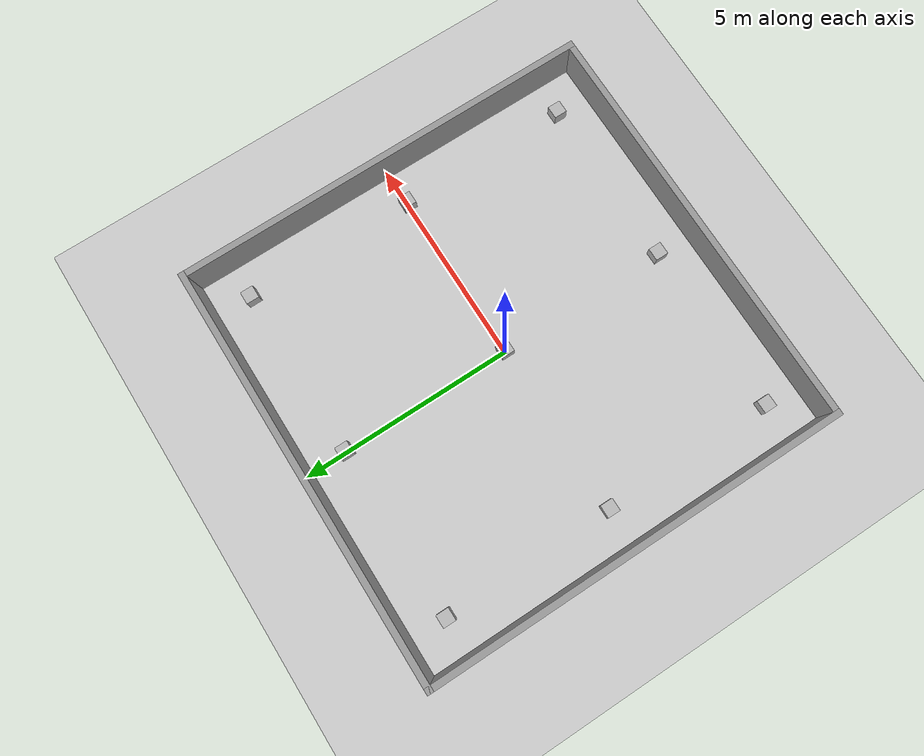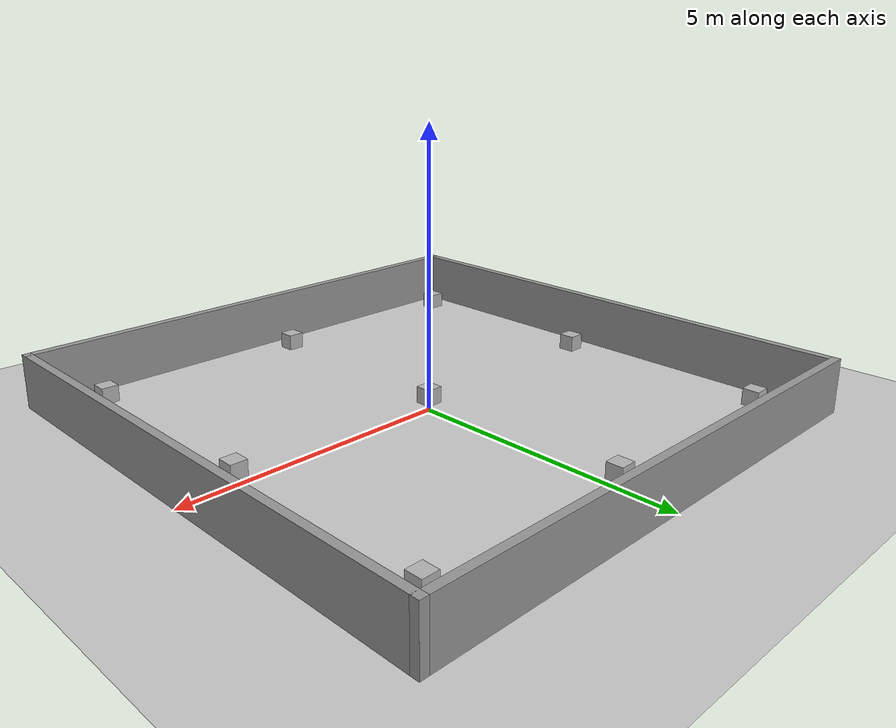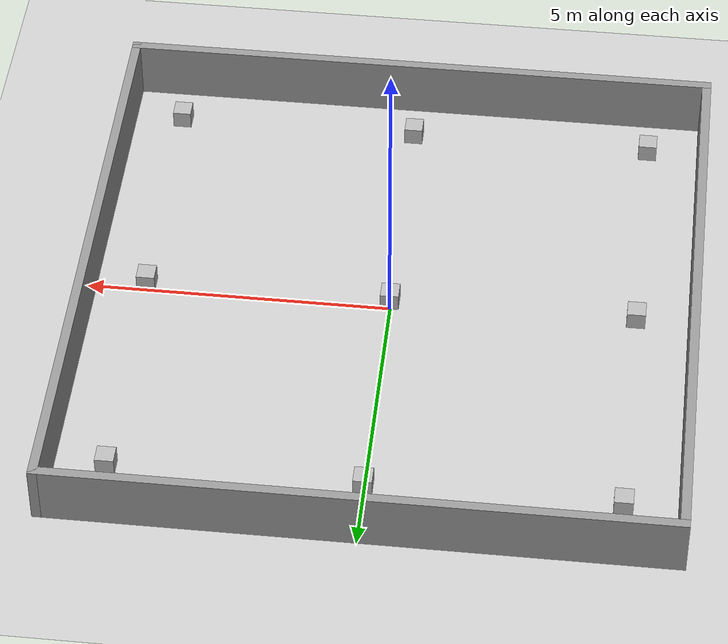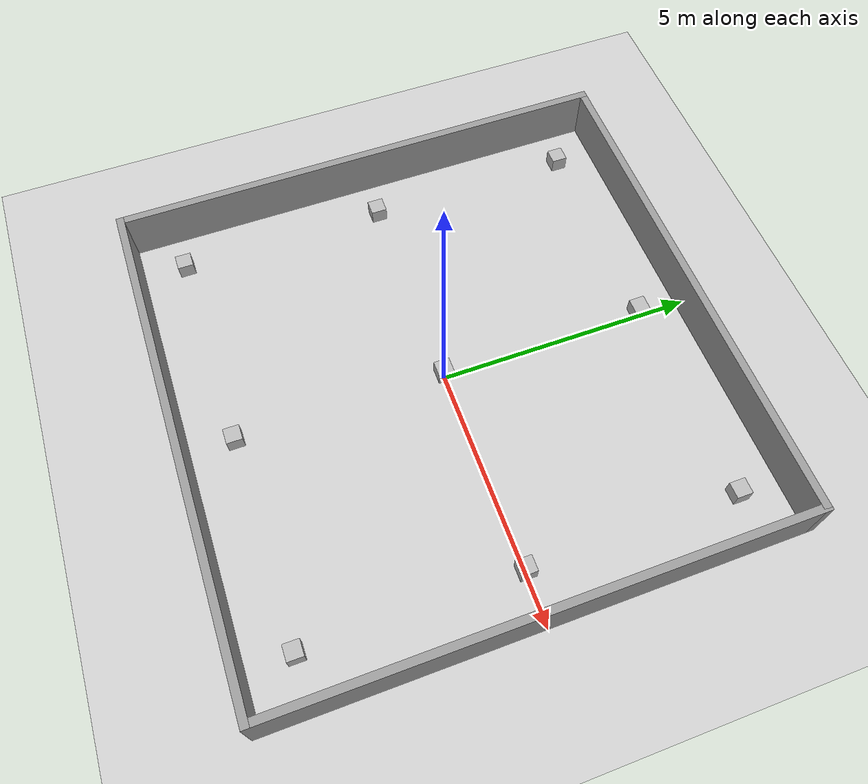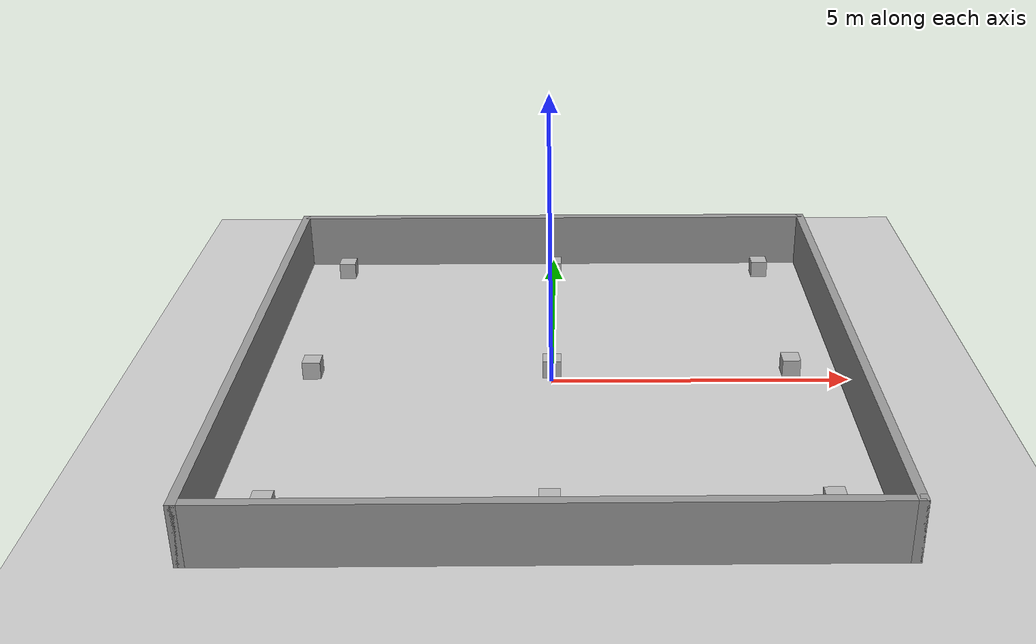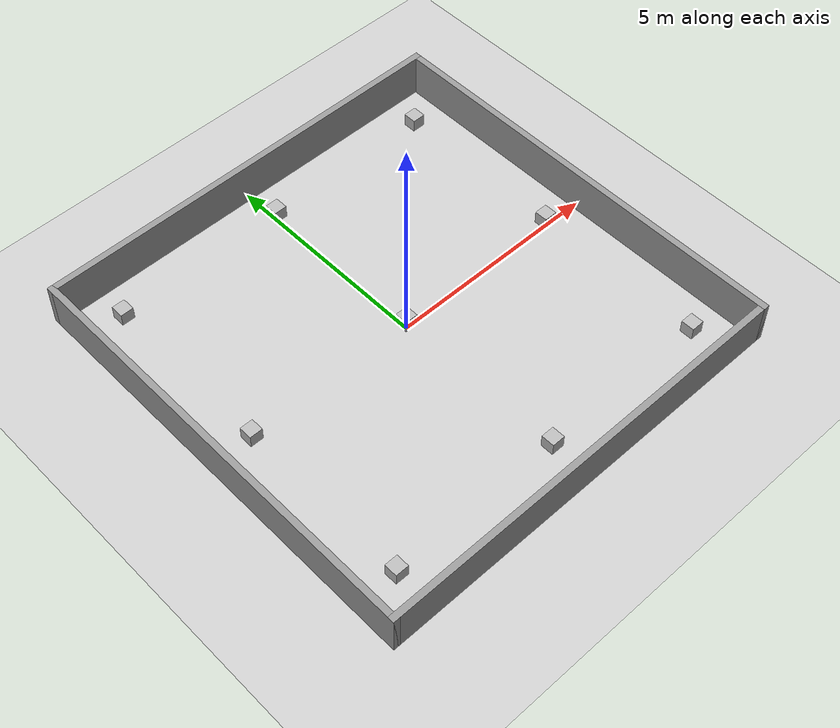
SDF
<?xml version='1.0' encoding='UTF-8'?>
<sdf version="1.6">
  <world name="default">
    <include>
      <uri>model://sun</uri>
    </include>
    <include>
      <uri>model://ground_plane</uri>
    </include>

    <model name="EmptyRoom">
      <include>
        <uri>model://empty_room</uri>
      </include>
    </model>

    <model name="DynamicObstacle1">
      <pose>-4 4 0.15 0 0 0</pose>
      <include>
        <uri>model://dynamic_obstacle</uri>
      </include>
    </model>

    <model name="DynamicObstacle2">
      <pose>-4 0 0.15 0 0 0</pose>
      <include>
        <uri>model://dynamic_obstacle</uri>
      </include>
    </model>

    <model name="DynamicObstacle3">
      <pose>-4 -4 0.15 0 0 0</pose>
      <include>
        <uri>model://dynamic_obstacle</uri>
      </include>
    </model>

    <model name="DynamicObstacle4">
      <pose>0 4 0.15 0 0 0</pose>
      <include>
        <uri>model://dynamic_obstacle</uri>
      </include>
    </model>

    <model name="DynamicObstacle5">
      <pose>0 0 0.15 0 0 0</pose>
      <include>
        <uri>model://dynamic_obstacle</uri>
      </include>
    </model>

    <model name="DynamicObstacle6">
      <pose>0 -4 0.15 0 0 0</pose>
      <include>
        <uri>model://dynamic_obstacle</uri>
      </include>
    </model>

    <model name="DynamicObstacle7">
      <pose>4 4 0.15 0 0 0</pose>
      <include>
        <uri>model://dynamic_obstacle</uri>
      </include>
    </model>

    <model name="DynamicObstacle8">
      <pose>4 0 0.15 0 0 0</pose>
      <include>
        <uri>model://dynamic_obstacle</uri>
      </include>
    </model>

    <model name="DynamicObstacle9">
      <pose>4 -4 0.15 0 0 0</pose>
      <include>
        <uri>model://dynamic_obstacle</uri>
      </include>
    </model>
  </world>
</sdf>

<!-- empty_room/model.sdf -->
<sdf version='1.6'>
  <model name='EmptyRoom'>
    <static>1</static>
    <pose frame=''>0.0 0.0 0.0 0.0 0.0 0.0</pose>
    <link name='Wall_1'>
      <collision name='Wall_1_Collision'>
        <geometry>
          <box>
            <size>10 0.15 1</size>
          </box>
        </geometry>
	<max_contacts>1</max_contacts>
	<surface>
          <bounce/>
          <friction>
            <ode/>
          </friction>
          <contact>
            <ode/>
          </contact>
        </surface>
        <pose frame=''>0 0 0.5 0 -0 0</pose>
      </collision>
      <visual name='Wall_1_Visual'>
        <pose frame=''>0 0 0.5 0 -0 0</pose>
        <geometry>
          <box>
            <size>10 0.15 1</size>
          </box>
        </geometry>
        <material>
          <script>
            <uri>file://media/materials/scripts/gazebo.material</uri>
            <name>Gazebo/Grey</name>
          </script>
          <ambient>1 1 1 1</ambient>
        </material>
        <meta>
          <layer>0</layer>
        </meta>
      </visual>
      <pose frame=''>-4.925 0 0 0 -0 -1.5708</pose>
    </link>
    <link name='Wall_2'>
      <collision name='Wall_2_Collision'>
        <geometry>
          <box>
            <size>10 0.15 1</size>
          </box>
        </geometry>
	<max_contacts>1</max_contacts>
	<surface>
          <bounce/>
          <friction>
            <ode/>
          </friction>
          <contact>
            <ode/>
          </contact>
        </surface>
        <pose frame=''>0 0 0.5 0 -0 0</pose>
      </collision>
      <visual name='Wall_2_Visual'>
        <pose frame=''>0 0 0.5 0 -0 0</pose>
        <geometry>
          <box>
            <size>10 0.15 1</size>
          </box>
        </geometry>
        <material>
          <script>
            <uri>file://media/materials/scripts/gazebo.material</uri>
            <name>Gazebo/Grey</name>
          </script>
          <ambient>1 1 1 1</ambient>
        </material>
        <meta>
          <layer>0</layer>
        </meta>
      </visual>
      <pose frame=''>-0 -4.925 0 0 -0 0</pose>
    </link>
    <link name='Wall_3'>
      <collision name='Wall_3_Collision'>
        <geometry>
          <box>
            <size>10 0.15 1</size>
          </box>
        </geometry>
	<max_contacts>1</max_contacts>
	<surface>
          <bounce/>
          <friction>
            <ode/>
          </friction>
          <contact>
            <ode/>
          </contact>
        </surface>
        <pose frame=''>0 0 0.5 0 -0 0</pose>
      </collision>
      <visual name='Wall_3_Visual'>
        <pose frame=''>0 0 0.5 0 -0 0</pose>
        <geometry>
          <box>
            <size>10 0.15 1</size>
          </box>
        </geometry>
        <material>
          <script>
            <uri>file://media/materials/scripts/gazebo.material</uri>
            <name>Gazebo/Grey</name>
          </script>
          <ambient>1 1 1 1</ambient>
        </material>
        <meta>
          <layer>0</layer>
        </meta>
      </visual>
      <pose frame=''>4.925 0 0 0 -0 1.5708</pose>
    </link>
    <link name='Wall_4'>
      <collision name='Wall_4_Collision'>
        <geometry>
          <box>
            <size>10 0.15 1</size>
          </box>
        </geometry>
	<max_contacts>1</max_contacts>
	<surface>
          <bounce/>
          <friction>
            <ode/>
          </friction>
          <contact>
            <ode/>
          </contact>
        </surface>
        <pose frame=''>0 0 0.5 0 -0 0</pose>
      </collision>
      <visual name='Wall_4_Visual'>
        <pose frame=''>0 0 0.5 0 -0 0</pose>
        <geometry>
          <box>
            <size>10 0.15 1</size>
          </box>
        </geometry>
        <material>
          <script>
            <uri>file://media/materials/scripts/gazebo.material</uri>
            <name>Gazebo/Grey</name>
          </script>
          <ambient>1 1 1 1</ambient>
        </material>
        <meta>
          <layer>0</layer>
        </meta>
      </visual>
      <pose frame=''>-0 4.925 0 0 -0 3.14159</pose>
    </link>
    <static>1</static>
  </model>
</sdf>

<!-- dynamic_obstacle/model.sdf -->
<sdf version="1.6">
    <model name="DynamicObstacle">
      <pose>0 0 0.15 0 0 0</pose>
      <link name="link">
	<gravity>1</gravity>
        <inertial>
          <pose>0 0 0 0 0 0</pose>
	  <inertia>
	    <ixx>0.17</ixx>
            <ixy>0.00</ixy>
            <ixz>0.00</ixz>
            <iyy>0.17</iyy>
            <iyz>0.00</iyz>
            <izz>0.17</izz>
          </inertia>
          <mass>10</mass>
        </inertial>
        <kinematic>false</kinematic>
        <collision name="collision">
          <max_contacts>10</max_contacts>
          <geometry>
            <box>
              <size>0.3 0.3 0.3</size>
            </box>
          </geometry>
	  <surface>
            <friction>
              <ode>
                <mu>0.0</mu>
                <mu2>0.0</mu2>
              </ode>
            </friction>
            <bounce>
              <restitution_coefficient>0.0</restitution_coefficient>
              <threshold>100000</threshold>
            </bounce>
	  <contact>
            <ode>
              <soft_cfm>0</soft_cfm>
              <soft_erp>0.2</soft_erp>
              <kd>1</kd>
	      <kp>2147483647</kp>
              <max_vel>0.01</max_vel>
              <min_depth>0.0</min_depth>
            </ode>
          </contact>
          </surface>
        </collision>
        <visual name="visual">
          <geometry>
            <box>
              <size>0.3 0.3 0.3</size>
            </box>
          </geometry>
        </visual>
      </link>
      <plugin name="random" filename="libRandomVelocityPlugin.so">
        <link>link</link>
        <initial_velocity>0 0.05 0</initial_velocity>
        <velocity_factor>0.5</velocity_factor>
        <update_period>3</update_period>
        <min_x>-0.5</min_x>
        <max_x>0.5</max_x>
        <min_y>-0.5</min_y>
        <max_y>0.5</max_y>
        <min_z>-10</min_z>
        <max_z>-5</max_z>
      </plugin>
    </model>
</sdf>
